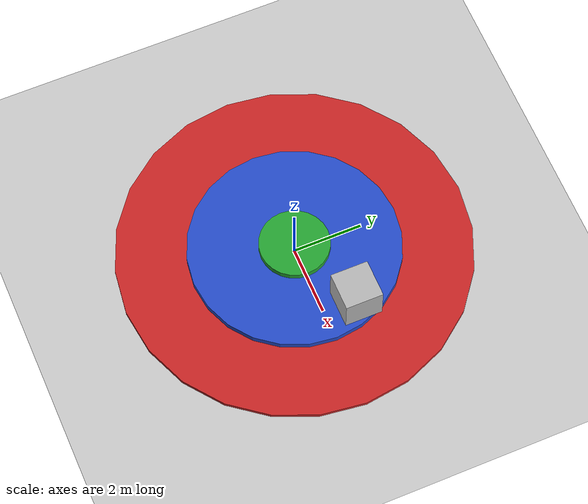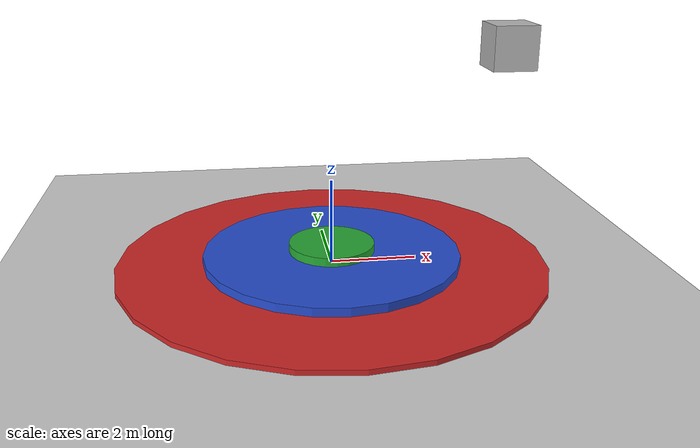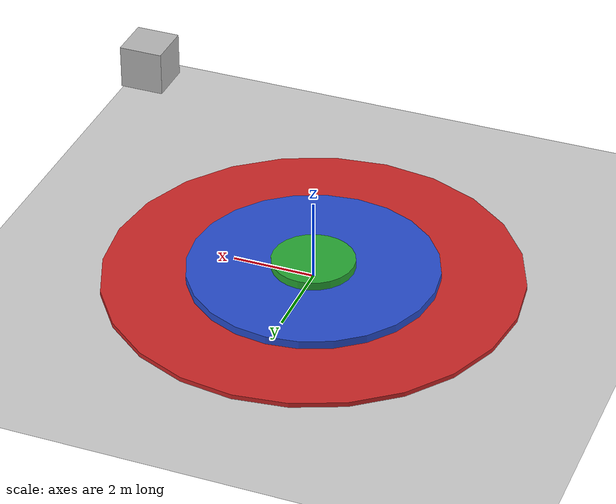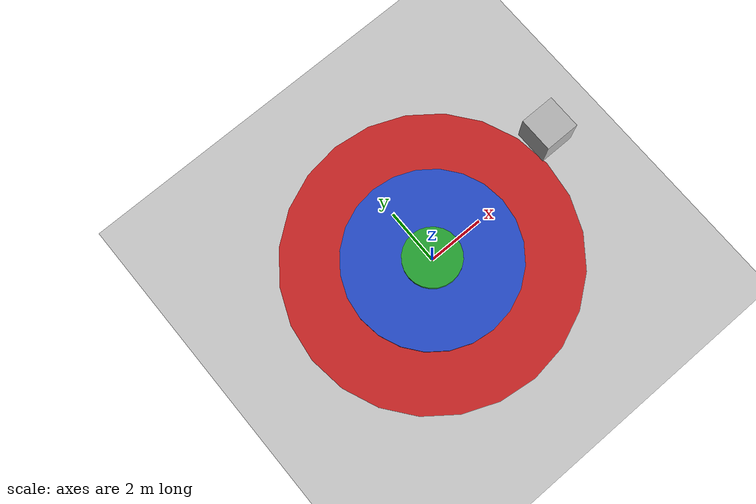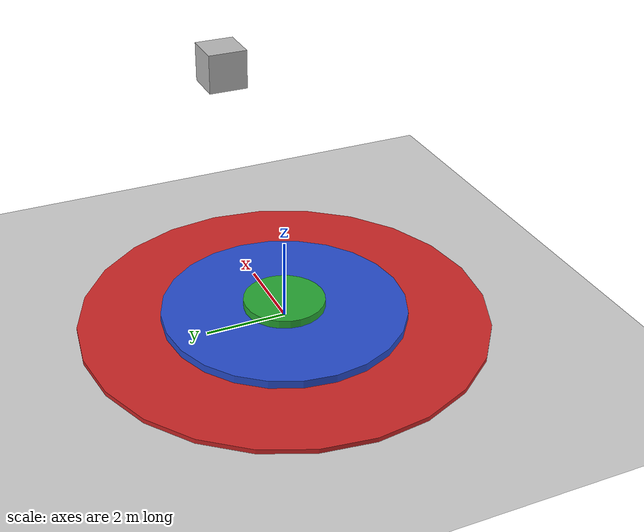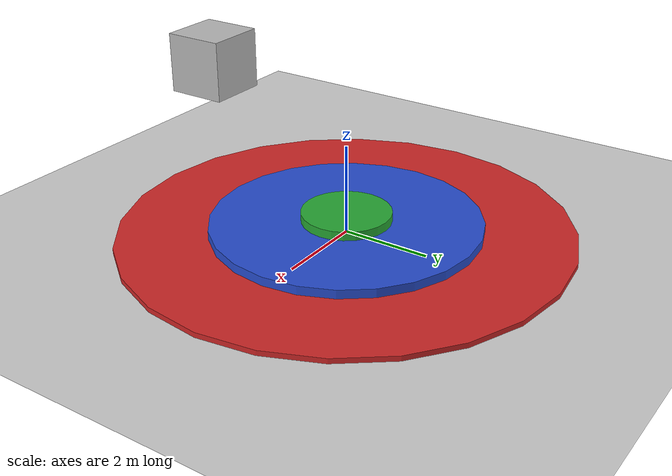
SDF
<?xml version="1.0"?>
<sdf version="1.4">
	<world name="default">

	<include>
		<uri>model://ground_plane</uri>
	</include>

	<include>
		<uri>model://landing_zone</uri>
	</include>

	<model name='unit_box'>
      <pose frame=''>4 0 5 0 0 0</pose>
      <link name='only_link'>
        <visual name="visual">
          <geometry>
            <box>
              <size>1 1 1</size>
            </box>
          </geometry>
        </visual>
        <collision name="collision">
          <geometry>
            <box>
              <size>1 1 1</size>
            </box>
          </geometry>
        </collision>
      </link>
    </model>

	<!-- Launch Red Zone: ContainPlugin -->
    <plugin name='ContainPlugin' filename='libContainPlugin.so'>
      <enabled>true</enabled>
      <entity>unit_box::only_link</entity>
      <namespace>red_zone_contain</namespace>
      <pose>0 0 0.2 0 0 0</pose>
      <geometry>
        <box>
  			<size>10 10 1</size>
  		</box>
      </geometry>
    </plugin>

    <!-- Launch Blue Zone: ContainPlugin -->
    <plugin name='ContainPlugin' filename='libContainPlugin.so'>
      <enabled>true</enabled>
      <entity>unit_box::only_link</entity>
      <namespace>blue_zone_contain</namespace>
      <pose>0 0 0.4 0 0 0</pose>
      <geometry>
        <box>
  			<size>5 5 1</size>
  		</box>
      </geometry>
    </plugin>

    <!-- Launch Green Zone: ContainPlugin -->
    <plugin name='ContainPlugin' filename='libContainPlugin.so'>
      <enabled>true</enabled>
      <entity>unit_box::only_link</entity>
      <namespace>green_zone_contain</namespace>
      <pose>0 0 0.6 0 0 0</pose>
      <geometry>
        <box>
  			<size>1 1 1</size>
  		</box>
      </geometry>
    </plugin>

    <!-- Launch example plugin -->
    <plugin name='UpdateRedZoneScore'
    	filename='libUpdateRedZoneScore.so'/>
    <plugin name='UpdateBlueZoneScore'
     	filename='libUpdateBlueZoneScore.so'/>
     <plugin name='UpdateGreenZoneScore'
     	filename='libUpdateGreenZoneScore.so'/>

	</world>
</sdf>

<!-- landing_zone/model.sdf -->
<sdf version='1.4'>
  <model name="landing_zone">
  	<static>true</static>

  		<link name='outer_ring'>
  			<pose>0 0 0 0 0 0</pose>

  			<collision name='collision'>
  				<geometry>
  					<cylinder>
  						<radius>5</radius>
  						<length>0.2</length>
  					</cylinder>
  				</geometry>
  			</collision>

  			<visual name='visual'>
  				<geometry>
  					<cylinder>
  						<radius>5</radius>
  						<length>0.2</length>
  					</cylinder>
  				</geometry>
  				<material>
          			<lighting>1</lighting>
          			<script>
            			<uri>file://media/materials/scripts/gazebo.material</uri>
            			<name>Gazebo/Red</name>
          			</script>
        		</material>
  			</visual>
  		</link>

  		<link name='middle_ring'>
  			<pose>0 0 0.2 0 0 0</pose>

  			<collision name='collision'>
  				<geometry>
  					<cylinder>
  						<radius>3</radius>
  						<length>0.2</length>
  					</cylinder>
  				</geometry>
  			</collision>

  			<visual name='visual'>
  				<geometry>
  					<cylinder>
  						<radius>3</radius>
  						<length>0.2</length>
  					</cylinder>
  				</geometry>
  				<material>
          			<lighting>1</lighting>
          			<script>
            			<uri>file://media/materials/scripts/gazebo.material</uri>
            			<name>Gazebo/Blue</name>
          			</script>
        		</material>
  			</visual>
  		</link>

  		<link name='inner_ring'>
  			<pose>0 0 0.4 0 0 0</pose>

  			<collision name='collision'>
  				<geometry>
  					<cylinder>
  						<radius>1</radius>
  						<length>0.2</length>
  					</cylinder>
  				</geometry>
  			</collision>

  			<visual name='visual'>
  				<geometry>
  					<cylinder>
  						<radius>1</radius>
  						<length>0.2</length>
  					</cylinder>
  				</geometry>
  				<material>
          			<lighting>1</lighting>
          			<script>
            			<uri>file://media/materials/scripts/gazebo.material</uri>
            			<name>Gazebo/Green</name>
          			</script>
        		</material>
  			</visual>
  		</link>

  </model>
</sdf>
